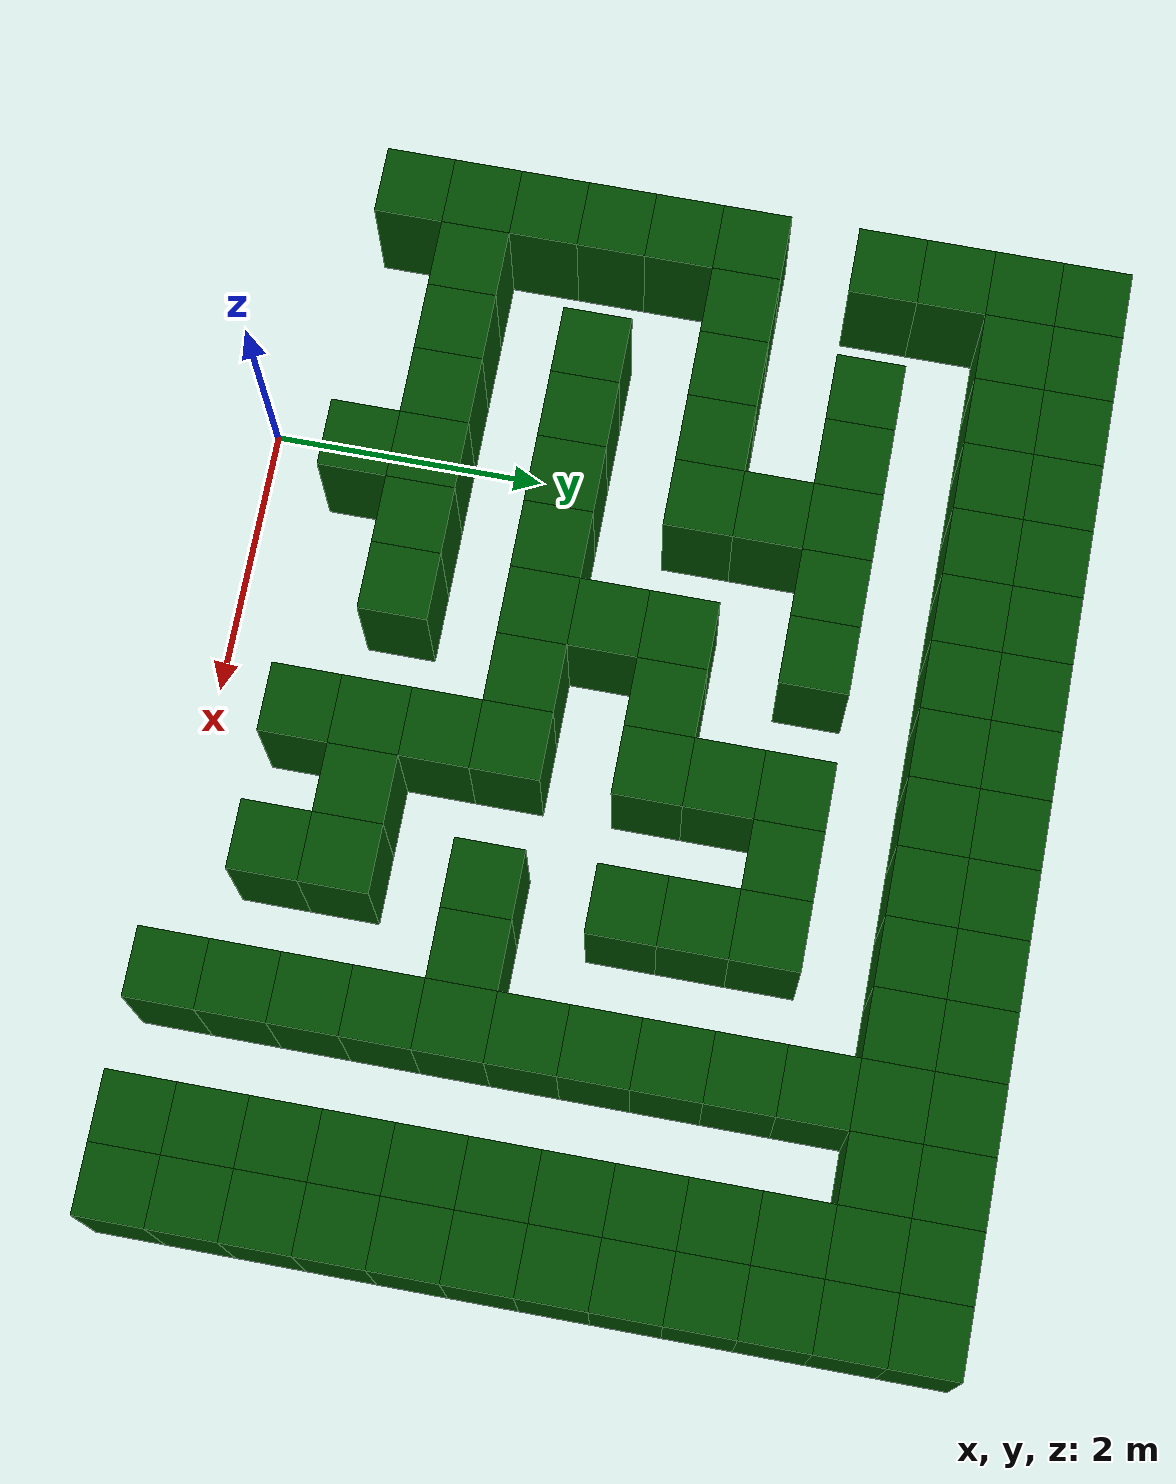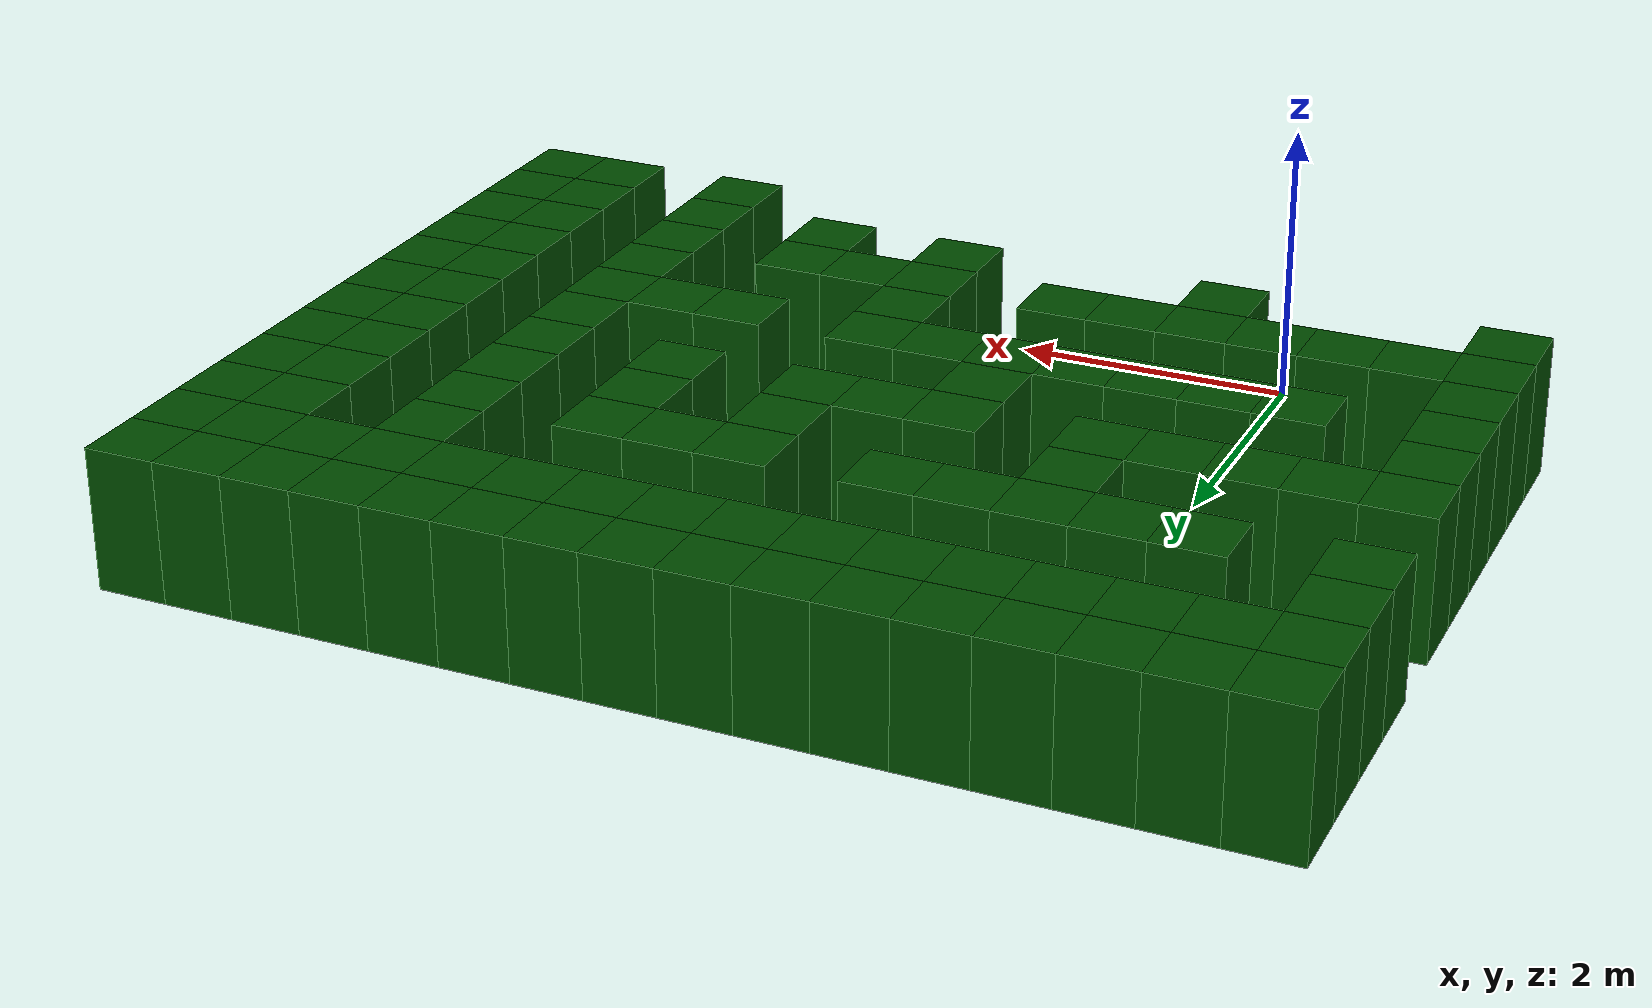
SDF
<sdf version="1.6">
 <world name="turtlebot3_maze">
  <model name="wall_20_12">
   <static>true</static>
   <pose>4.25 0.25 0.5 0 0 0</pose>
   <link name="link">
    <collision name="collision"><geometry><box><size>0.5 0.5 1.0</size></box></geometry></collision>
    <visual name="visual">
     <geometry><box><size>0.5 0.5 1.0</size></box></geometry>
     <material><ambient>0 0.3 0 1</ambient><diffuse>0 0.3 0 1</diffuse></material>
    </visual>
   </link>
  </model>
  <model name="wall_22_12">
   <static>true</static>
   <pose>5.25 0.25 0.5 0 0 0</pose>
   <link name="link">
    <collision name="collision"><geometry><box><size>0.5 0.5 1.0</size></box></geometry></collision>
    <visual name="visual">
     <geometry><box><size>0.5 0.5 1.0</size></box></geometry>
     <material><ambient>0 0.3 0 1</ambient><diffuse>0 0.3 0 1</diffuse></material>
    </visual>
   </link>
  </model>
  <model name="wall_23_12">
   <static>true</static>
   <pose>5.75 0.25 0.5 0 0 0</pose>
   <link name="link">
    <collision name="collision"><geometry><box><size>0.5 0.5 1.0</size></box></geometry></collision>
    <visual name="visual">
     <geometry><box><size>0.5 0.5 1.0</size></box></geometry>
     <material><ambient>0 0.3 0 1</ambient><diffuse>0 0.3 0 1</diffuse></material>
    </visual>
   </link>
  </model>
  <model name="wall_8_13">
   <static>true</static>
   <pose>-1.75 0.75 0.5 0 0 0</pose>
   <link name="link">
    <collision name="collision"><geometry><box><size>0.5 0.5 1.0</size></box></geometry></collision>
    <visual name="visual">
     <geometry><box><size>0.5 0.5 1.0</size></box></geometry>
     <material><ambient>0 0.3 0 1</ambient><diffuse>0 0.3 0 1</diffuse></material>
    </visual>
   </link>
  </model>
  <model name="wall_12_13">
   <static>true</static>
   <pose>0.25 0.75 0.5 0 0 0</pose>
   <link name="link">
    <collision name="collision"><geometry><box><size>0.5 0.5 1.0</size></box></geometry></collision>
    <visual name="visual">
     <geometry><box><size>0.5 0.5 1.0</size></box></geometry>
     <material><ambient>0 0.3 0 1</ambient><diffuse>0 0.3 0 1</diffuse></material>
    </visual>
   </link>
  </model>
  <model name="wall_16_13">
   <static>true</static>
   <pose>2.25 0.75 0.5 0 0 0</pose>
   <link name="link">
    <collision name="collision"><geometry><box><size>0.5 0.5 1.0</size></box></geometry></collision>
    <visual name="visual">
     <geometry><box><size>0.5 0.5 1.0</size></box></geometry>
     <material><ambient>0 0.3 0 1</ambient><diffuse>0 0.3 0 1</diffuse></material>
    </visual>
   </link>
  </model>
  <model name="wall_18_13">
   <static>true</static>
   <pose>3.25 0.75 0.5 0 0 0</pose>
   <link name="link">
    <collision name="collision"><geometry><box><size>0.5 0.5 1.0</size></box></geometry></collision>
    <visual name="visual">
     <geometry><box><size>0.5 0.5 1.0</size></box></geometry>
     <material><ambient>0 0.3 0 1</ambient><diffuse>0 0.3 0 1</diffuse></material>
    </visual>
   </link>
  </model>
  <model name="wall_20_13">
   <static>true</static>
   <pose>4.25 0.75 0.5 0 0 0</pose>
   <link name="link">
    <collision name="collision"><geometry><box><size>0.5 0.5 1.0</size></box></geometry></collision>
    <visual name="visual">
     <geometry><box><size>0.5 0.5 1.0</size></box></geometry>
     <material><ambient>0 0.3 0 1</ambient><diffuse>0 0.3 0 1</diffuse></material>
    </visual>
   </link>
  </model>
  <model name="wall_22_13">
   <static>true</static>
   <pose>5.25 0.75 0.5 0 0 0</pose>
   <link name="link">
    <collision name="collision"><geometry><box><size>0.5 0.5 1.0</size></box></geometry></collision>
    <visual name="visual">
     <geometry><box><size>0.5 0.5 1.0</size></box></geometry>
     <material><ambient>0 0.3 0 1</ambient><diffuse>0 0.3 0 1</diffuse></material>
    </visual>
   </link>
  </model>
  <model name="wall_23_13">
   <static>true</static>
   <pose>5.75 0.75 0.5 0 0 0</pose>
   <link name="link">
    <collision name="collision"><geometry><box><size>0.5 0.5 1.0</size></box></geometry></collision>
    <visual name="visual">
     <geometry><box><size>0.5 0.5 1.0</size></box></geometry>
     <material><ambient>0 0.3 0 1</ambient><diffuse>0 0.3 0 1</diffuse></material>
    </visual>
   </link>
  </model>
  <model name="wall_8_14">
   <static>true</static>
   <pose>-1.75 1.25 0.5 0 0 0</pose>
   <link name="link">
    <collision name="collision"><geometry><box><size>0.5 0.5 1.0</size></box></geometry></collision>
    <visual name="visual">
     <geometry><box><size>0.5 0.5 1.0</size></box></geometry>
     <material><ambient>0 0.3 0 1</ambient><diffuse>0 0.3 0 1</diffuse></material>
    </visual>
   </link>
  </model>
  <model name="wall_9_14">
   <static>true</static>
   <pose>-1.25 1.25 0.5 0 0 0</pose>
   <link name="link">
    <collision name="collision"><geometry><box><size>0.5 0.5 1.0</size></box></geometry></collision>
    <visual name="visual">
     <geometry><box><size>0.5 0.5 1.0</size></box></geometry>
     <material><ambient>0 0.3 0 1</ambient><diffuse>0 0.3 0 1</diffuse></material>
    </visual>
   </link>
  </model>
  <model name="wall_10_14">
   <static>true</static>
   <pose>-0.75 1.25 0.5 0 0 0</pose>
   <link name="link">
    <collision name="collision"><geometry><box><size>0.5 0.5 1.0</size></box></geometry></collision>
    <visual name="visual">
     <geometry><box><size>0.5 0.5 1.0</size></box></geometry>
     <material><ambient>0 0.3 0 1</ambient><diffuse>0 0.3 0 1</diffuse></material>
    </visual>
   </link>
  </model>
  <model name="wall_11_14">
   <static>true</static>
   <pose>-0.25 1.25 0.5 0 0 0</pose>
   <link name="link">
    <collision name="collision"><geometry><box><size>0.5 0.5 1.0</size></box></geometry></collision>
    <visual name="visual">
     <geometry><box><size>0.5 0.5 1.0</size></box></geometry>
     <material><ambient>0 0.3 0 1</ambient><diffuse>0 0.3 0 1</diffuse></material>
    </visual>
   </link>
  </model>
  <model name="wall_12_14">
   <static>true</static>
   <pose>0.25 1.25 0.5 0 0 0</pose>
   <link name="link">
    <collision name="collision"><geometry><box><size>0.5 0.5 1.0</size></box></geometry></collision>
    <visual name="visual">
     <geometry><box><size>0.5 0.5 1.0</size></box></geometry>
     <material><ambient>0 0.3 0 1</ambient><diffuse>0 0.3 0 1</diffuse></material>
    </visual>
   </link>
  </model>
  <model name="wall_13_14">
   <static>true</static>
   <pose>0.75 1.25 0.5 0 0 0</pose>
   <link name="link">
    <collision name="collision"><geometry><box><size>0.5 0.5 1.0</size></box></geometry></collision>
    <visual name="visual">
     <geometry><box><size>0.5 0.5 1.0</size></box></geometry>
     <material><ambient>0 0.3 0 1</ambient><diffuse>0 0.3 0 1</diffuse></material>
    </visual>
   </link>
  </model>
  <model name="wall_14_14">
   <static>true</static>
   <pose>1.25 1.25 0.5 0 0 0</pose>
   <link name="link">
    <collision name="collision"><geometry><box><size>0.5 0.5 1.0</size></box></geometry></collision>
    <visual name="visual">
     <geometry><box><size>0.5 0.5 1.0</size></box></geometry>
     <material><ambient>0 0.3 0 1</ambient><diffuse>0 0.3 0 1</diffuse></material>
    </visual>
   </link>
  </model>
  <model name="wall_16_14">
   <static>true</static>
   <pose>2.25 1.25 0.5 0 0 0</pose>
   <link name="link">
    <collision name="collision"><geometry><box><size>0.5 0.5 1.0</size></box></geometry></collision>
    <visual name="visual">
     <geometry><box><size>0.5 0.5 1.0</size></box></geometry>
     <material><ambient>0 0.3 0 1</ambient><diffuse>0 0.3 0 1</diffuse></material>
    </visual>
   </link>
  </model>
  <model name="wall_17_14">
   <static>true</static>
   <pose>2.75 1.25 0.5 0 0 0</pose>
   <link name="link">
    <collision name="collision"><geometry><box><size>0.5 0.5 1.0</size></box></geometry></collision>
    <visual name="visual">
     <geometry><box><size>0.5 0.5 1.0</size></box></geometry>
     <material><ambient>0 0.3 0 1</ambient><diffuse>0 0.3 0 1</diffuse></material>
    </visual>
   </link>
  </model>
  <model name="wall_18_14">
   <static>true</static>
   <pose>3.25 1.25 0.5 0 0 0</pose>
   <link name="link">
    <collision name="collision"><geometry><box><size>0.5 0.5 1.0</size></box></geometry></collision>
    <visual name="visual">
     <geometry><box><size>0.5 0.5 1.0</size></box></geometry>
     <material><ambient>0 0.3 0 1</ambient><diffuse>0 0.3 0 1</diffuse></material>
    </visual>
   </link>
  </model>
  <model name="wall_20_14">
   <static>true</static>
   <pose>4.25 1.25 0.5 0 0 0</pose>
   <link name="link">
    <collision name="collision"><geometry><box><size>0.5 0.5 1.0</size></box></geometry></collision>
    <visual name="visual">
     <geometry><box><size>0.5 0.5 1.0</size></box></geometry>
     <material><ambient>0 0.3 0 1</ambient><diffuse>0 0.3 0 1</diffuse></material>
    </visual>
   </link>
  </model>
  <model name="wall_22_14">
   <static>true</static>
   <pose>5.25 1.25 0.5 0 0 0</pose>
   <link name="link">
    <collision name="collision"><geometry><box><size>0.5 0.5 1.0</size></box></geometry></collision>
    <visual name="visual">
     <geometry><box><size>0.5 0.5 1.0</size></box></geometry>
     <material><ambient>0 0.3 0 1</ambient><diffuse>0 0.3 0 1</diffuse></material>
    </visual>
   </link>
  </model>
  <model name="wall_23_14">
   <static>true</static>
   <pose>5.75 1.25 0.5 0 0 0</pose>
   <link name="link">
    <collision name="collision"><geometry><box><size>0.5 0.5 1.0</size></box></geometry></collision>
    <visual name="visual">
     <geometry><box><size>0.5 0.5 1.0</size></box></geometry>
     <material><ambient>0 0.3 0 1</ambient><diffuse>0 0.3 0 1</diffuse></material>
    </visual>
   </link>
  </model>
  <model name="wall_8_15">
   <static>true</static>
   <pose>-1.75 1.75 0.5 0 0 0</pose>
   <link name="link">
    <collision name="collision"><geometry><box><size>0.5 0.5 1.0</size></box></geometry></collision>
    <visual name="visual">
     <geometry><box><size>0.5 0.5 1.0</size></box></geometry>
     <material><ambient>0 0.3 0 1</ambient><diffuse>0 0.3 0 1</diffuse></material>
    </visual>
   </link>
  </model>
  <model name="wall_16_15">
   <static>true</static>
   <pose>2.25 1.75 0.5 0 0 0</pose>
   <link name="link">
    <collision name="collision"><geometry><box><size>0.5 0.5 1.0</size></box></geometry></collision>
    <visual name="visual">
     <geometry><box><size>0.5 0.5 1.0</size></box></geometry>
     <material><ambient>0 0.3 0 1</ambient><diffuse>0 0.3 0 1</diffuse></material>
    </visual>
   </link>
  </model>
  <model name="wall_20_15">
   <static>true</static>
   <pose>4.25 1.75 0.5 0 0 0</pose>
   <link name="link">
    <collision name="collision"><geometry><box><size>0.5 0.5 1.0</size></box></geometry></collision>
    <visual name="visual">
     <geometry><box><size>0.5 0.5 1.0</size></box></geometry>
     <material><ambient>0 0.3 0 1</ambient><diffuse>0 0.3 0 1</diffuse></material>
    </visual>
   </link>
  </model>
  <model name="wall_22_15">
   <static>true</static>
   <pose>5.25 1.75 0.5 0 0 0</pose>
   <link name="link">
    <collision name="collision"><geometry><box><size>0.5 0.5 1.0</size></box></geometry></collision>
    <visual name="visual">
     <geometry><box><size>0.5 0.5 1.0</size></box></geometry>
     <material><ambient>0 0.3 0 1</ambient><diffuse>0 0.3 0 1</diffuse></material>
    </visual>
   </link>
  </model>
  <model name="wall_23_15">
   <static>true</static>
   <pose>5.75 1.75 0.5 0 0 0</pose>
   <link name="link">
    <collision name="collision"><geometry><box><size>0.5 0.5 1.0</size></box></geometry></collision>
    <visual name="visual">
     <geometry><box><size>0.5 0.5 1.0</size></box></geometry>
     <material><ambient>0 0.3 0 1</ambient><diffuse>0 0.3 0 1</diffuse></material>
    </visual>
   </link>
  </model>
  <model name="wall_8_16">
   <static>true</static>
   <pose>-1.75 2.25 0.5 0 0 0</pose>
   <link name="link">
    <collision name="collision"><geometry><box><size>0.5 0.5 1.0</size></box></geometry></collision>
    <visual name="visual">
     <geometry><box><size>0.5 0.5 1.0</size></box></geometry>
     <material><ambient>0 0.3 0 1</ambient><diffuse>0 0.3 0 1</diffuse></material>
    </visual>
   </link>
  </model>
  <model name="wall_10_16">
   <static>true</static>
   <pose>-0.75 2.25 0.5 0 0 0</pose>
   <link name="link">
    <collision name="collision"><geometry><box><size>0.5 0.5 1.0</size></box></geometry></collision>
    <visual name="visual">
     <geometry><box><size>0.5 0.5 1.0</size></box></geometry>
     <material><ambient>0 0.3 0 1</ambient><diffuse>0 0.3 0 1</diffuse></material>
    </visual>
   </link>
  </model>
  <model name="wall_11_16">
   <static>true</static>
   <pose>-0.25 2.25 0.5 0 0 0</pose>
   <link name="link">
    <collision name="collision"><geometry><box><size>0.5 0.5 1.0</size></box></geometry></collision>
    <visual name="visual">
     <geometry><box><size>0.5 0.5 1.0</size></box></geometry>
     <material><ambient>0 0.3 0 1</ambient><diffuse>0 0.3 0 1</diffuse></material>
    </visual>
   </link>
  </model>
  <model name="wall_12_16">
   <static>true</static>
   <pose>0.25 2.25 0.5 0 0 0</pose>
   <link name="link">
    <collision name="collision"><geometry><box><size>0.5 0.5 1.0</size></box></geometry></collision>
    <visual name="visual">
     <geometry><box><size>0.5 0.5 1.0</size></box></geometry>
     <material><ambient>0 0.3 0 1</ambient><diffuse>0 0.3 0 1</diffuse></material>
    </visual>
   </link>
  </model>
  <model name="wall_13_16">
   <static>true</static>
   <pose>0.75 2.25 0.5 0 0 0</pose>
   <link name="link">
    <collision name="collision"><geometry><box><size>0.5 0.5 1.0</size></box></geometry></collision>
    <visual name="visual">
     <geometry><box><size>0.5 0.5 1.0</size></box></geometry>
     <material><ambient>0 0.3 0 1</ambient><diffuse>0 0.3 0 1</diffuse></material>
    </visual>
   </link>
  </model>
  <model name="wall_14_16">
   <static>true</static>
   <pose>1.25 2.25 0.5 0 0 0</pose>
   <link name="link">
    <collision name="collision"><geometry><box><size>0.5 0.5 1.0</size></box></geometry></collision>
    <visual name="visual">
     <geometry><box><size>0.5 0.5 1.0</size></box></geometry>
     <material><ambient>0 0.3 0 1</ambient><diffuse>0 0.3 0 1</diffuse></material>
    </visual>
   </link>
  </model>
  <model name="wall_15_16">
   <static>true</static>
   <pose>1.75 2.25 0.5 0 0 0</pose>
   <link name="link">
    <collision name="collision"><geometry><box><size>0.5 0.5 1.0</size></box></geometry></collision>
    <visual name="visual">
     <geometry><box><size>0.5 0.5 1.0</size></box></geometry>
     <material><ambient>0 0.3 0 1</ambient><diffuse>0 0.3 0 1</diffuse></material>
    </visual>
   </link>
  </model>
  <model name="wall_16_16">
   <static>true</static>
   <pose>2.25 2.25 0.5 0 0 0</pose>
   <link name="link">
    <collision name="collision"><geometry><box><size>0.5 0.5 1.0</size></box></geometry></collision>
    <visual name="visual">
     <geometry><box><size>0.5 0.5 1.0</size></box></geometry>
     <material><ambient>0 0.3 0 1</ambient><diffuse>0 0.3 0 1</diffuse></material>
    </visual>
   </link>
  </model>
  <model name="wall_18_16">
   <static>true</static>
   <pose>3.25 2.25 0.5 0 0 0</pose>
   <link name="link">
    <collision name="collision"><geometry><box><size>0.5 0.5 1.0</size></box></geometry></collision>
    <visual name="visual">
     <geometry><box><size>0.5 0.5 1.0</size></box></geometry>
     <material><ambient>0 0.3 0 1</ambient><diffuse>0 0.3 0 1</diffuse></material>
    </visual>
   </link>
  </model>
  <model name="wall_19_16">
   <static>true</static>
   <pose>3.75 2.25 0.5 0 0 0</pose>
   <link name="link">
    <collision name="collision"><geometry><box><size>0.5 0.5 1.0</size></box></geometry></collision>
    <visual name="visual">
     <geometry><box><size>0.5 0.5 1.0</size></box></geometry>
     <material><ambient>0 0.3 0 1</ambient><diffuse>0 0.3 0 1</diffuse></material>
    </visual>
   </link>
  </model>
  <model name="wall_20_16">
   <static>true</static>
   <pose>4.25 2.25 0.5 0 0 0</pose>
   <link name="link">
    <collision name="collision"><geometry><box><size>0.5 0.5 1.0</size></box></geometry></collision>
    <visual name="visual">
     <geometry><box><size>0.5 0.5 1.0</size></box></geometry>
     <material><ambient>0 0.3 0 1</ambient><diffuse>0 0.3 0 1</diffuse></material>
    </visual>
   </link>
  </model>
  <model name="wall_22_16">
   <static>true</static>
   <pose>5.25 2.25 0.5 0 0 0</pose>
   <link name="link">
    <collision name="collision"><geometry><box><size>0.5 0.5 1.0</size></box></geometry></collision>
    <visual name="visual">
     <geometry><box><size>0.5 0.5 1.0</size></box></geometry>
     <material><ambient>0 0.3 0 1</ambient><diffuse>0 0.3 0 1</diffuse></material>
    </visual>
   </link>
  </model>
  <model name="wall_23_16">
   <static>true</static>
   <pose>5.75 2.25 0.5 0 0 0</pose>
   <link name="link">
    <collision name="collision"><geometry><box><size>0.5 0.5 1.0</size></box></geometry></collision>
    <visual name="visual">
     <geometry><box><size>0.5 0.5 1.0</size></box></geometry>
     <material><ambient>0 0.3 0 1</ambient><diffuse>0 0.3 0 1</diffuse></material>
    </visual>
   </link>
  </model>
  <model name="wall_8_17">
   <static>true</static>
   <pose>-1.75 2.75 0.5 0 0 0</pose>
   <link name="link">
    <collision name="collision"><geometry><box><size>0.5 0.5 1.0</size></box></geometry></collision>
    <visual name="visual">
     <geometry><box><size>0.5 0.5 1.0</size></box></geometry>
     <material><ambient>0 0.3 0 1</ambient><diffuse>0 0.3 0 1</diffuse></material>
    </visual>
   </link>
  </model>
  <model name="wall_14_17">
   <static>true</static>
   <pose>1.25 2.75 0.5 0 0 0</pose>
   <link name="link">
    <collision name="collision"><geometry><box><size>0.5 0.5 1.0</size></box></geometry></collision>
    <visual name="visual">
     <geometry><box><size>0.5 0.5 1.0</size></box></geometry>
     <material><ambient>0 0.3 0 1</ambient><diffuse>0 0.3 0 1</diffuse></material>
    </visual>
   </link>
  </model>
  <model name="wall_20_17">
   <static>true</static>
   <pose>4.25 2.75 0.5 0 0 0</pose>
   <link name="link">
    <collision name="collision"><geometry><box><size>0.5 0.5 1.0</size></box></geometry></collision>
    <visual name="visual">
     <geometry><box><size>0.5 0.5 1.0</size></box></geometry>
     <material><ambient>0 0.3 0 1</ambient><diffuse>0 0.3 0 1</diffuse></material>
    </visual>
   </link>
  </model>
  <model name="wall_22_17">
   <static>true</static>
   <pose>5.25 2.75 0.5 0 0 0</pose>
   <link name="link">
    <collision name="collision"><geometry><box><size>0.5 0.5 1.0</size></box></geometry></collision>
    <visual name="visual">
     <geometry><box><size>0.5 0.5 1.0</size></box></geometry>
     <material><ambient>0 0.3 0 1</ambient><diffuse>0 0.3 0 1</diffuse></material>
    </visual>
   </link>
  </model>
  <model name="wall_23_17">
   <static>true</static>
   <pose>5.75 2.75 0.5 0 0 0</pose>
   <link name="link">
    <collision name="collision"><geometry><box><size>0.5 0.5 1.0</size></box></geometry></collision>
    <visual name="visual">
     <geometry><box><size>0.5 0.5 1.0</size></box></geometry>
     <material><ambient>0 0.3 0 1</ambient><diffuse>0 0.3 0 1</diffuse></material>
    </visual>
   </link>
  </model>
  <model name="wall_8_18">
   <static>true</static>
   <pose>-1.75 3.25 0.5 0 0 0</pose>
   <link name="link">
    <collision name="collision"><geometry><box><size>0.5 0.5 1.0</size></box></geometry></collision>
    <visual name="visual">
     <geometry><box><size>0.5 0.5 1.0</size></box></geometry>
     <material><ambient>0 0.3 0 1</ambient><diffuse>0 0.3 0 1</diffuse></material>
    </visual>
   </link>
  </model>
  <model name="wall_9_18">
   <static>true</static>
   <pose>-1.25 3.25 0.5 0 0 0</pose>
   <link name="link">
    <collision name="collision"><geometry><box><size>0.5 0.5 1.0</size></box></geometry></collision>
    <visual name="visual">
     <geometry><box><size>0.5 0.5 1.0</size></box></geometry>
     <material><ambient>0 0.3 0 1</ambient><diffuse>0 0.3 0 1</diffuse></material>
    </visual>
   </link>
  </model>
  <model name="wall_10_18">
   <static>true</static>
   <pose>-0.75 3.25 0.5 0 0 0</pose>
   <link name="link">
    <collision name="collision"><geometry><box><size>0.5 0.5 1.0</size></box></geometry></collision>
    <visual name="visual">
     <geometry><box><size>0.5 0.5 1.0</size></box></geometry>
     <material><ambient>0 0.3 0 1</ambient><diffuse>0 0.3 0 1</diffuse></material>
    </visual>
   </link>
  </model>
  <model name="wall_11_18">
   <static>true</static>
   <pose>-0.25 3.25 0.5 0 0 0</pose>
   <link name="link">
    <collision name="collision"><geometry><box><size>0.5 0.5 1.0</size></box></geometry></collision>
    <visual name="visual">
     <geometry><box><size>0.5 0.5 1.0</size></box></geometry>
     <material><ambient>0 0.3 0 1</ambient><diffuse>0 0.3 0 1</diffuse></material>
    </visual>
   </link>
  </model>
  <model name="wall_12_18">
   <static>true</static>
   <pose>0.25 3.25 0.5 0 0 0</pose>
   <link name="link">
    <collision name="collision"><geometry><box><size>0.5 0.5 1.0</size></box></geometry></collision>
    <visual name="visual">
     <geometry><box><size>0.5 0.5 1.0</size></box></geometry>
     <material><ambient>0 0.3 0 1</ambient><diffuse>0 0.3 0 1</diffuse></material>
    </visual>
   </link>
  </model>
  <model name="wall_14_18">
   <static>true</static>
   <pose>1.25 3.25 0.5 0 0 0</pose>
   <link name="link">
    <collision name="collision"><geometry><box><size>0.5 0.5 1.0</size></box></geometry></collision>
    <visual name="visual">
     <geometry><box><size>0.5 0.5 1.0</size></box></geometry>
     <material><ambient>0 0.3 0 1</ambient><diffuse>0 0.3 0 1</diffuse></material>
    </visual>
   </link>
  </model>
  <model name="wall_15_18">
   <static>true</static>
   <pose>1.75 3.25 0.5 0 0 0</pose>
   <link name="link">
    <collision name="collision"><geometry><box><size>0.5 0.5 1.0</size></box></geometry></collision>
    <visual name="visual">
     <geometry><box><size>0.5 0.5 1.0</size></box></geometry>
     <material><ambient>0 0.3 0 1</ambient><diffuse>0 0.3 0 1</diffuse></material>
    </visual>
   </link>
  </model>
  <model name="wall_16_18">
   <static>true</static>
   <pose>2.25 3.25 0.5 0 0 0</pose>
   <link name="link">
    <collision name="collision"><geometry><box><size>0.5 0.5 1.0</size></box></geometry></collision>
    <visual name="visual">
     <geometry><box><size>0.5 0.5 1.0</size></box></geometry>
     <material><ambient>0 0.3 0 1</ambient><diffuse>0 0.3 0 1</diffuse></material>
    </visual>
   </link>
  </model>
  <model name="wall_18_18">
   <static>true</static>
   <pose>3.25 3.25 0.5 0 0 0</pose>
   <link name="link">
    <collision name="collision"><geometry><box><size>0.5 0.5 1.0</size></box></geometry></collision>
    <visual name="visual">
     <geometry><box><size>0.5 0.5 1.0</size></box></geometry>
     <material><ambient>0 0.3 0 1</ambient><diffuse>0 0.3 0 1</diffuse></material>
    </visual>
   </link>
  </model>
  <model name="wall_20_18">
   <static>true</static>
   <pose>4.25 3.25 0.5 0 0 0</pose>
   <link name="link">
    <collision name="collision"><geometry><box><size>0.5 0.5 1.0</size></box></geometry></collision>
    <visual name="visual">
     <geometry><box><size>0.5 0.5 1.0</size></box></geometry>
     <material><ambient>0 0.3 0 1</ambient><diffuse>0 0.3 0 1</diffuse></material>
    </visual>
   </link>
  </model>
  <model name="wall_22_18">
   <static>true</static>
   <pose>5.25 3.25 0.5 0 0 0</pose>
   <link name="link">
    <collision name="collision"><geometry><box><size>0.5 0.5 1.0</size></box></geometry></collision>
    <visual name="visual">
     <geometry><box><size>0.5 0.5 1.0</size></box></geometry>
     <material><ambient>0 0.3 0 1</ambient><diffuse>0 0.3 0 1</diffuse></material>
    </visual>
   </link>
  </model>
  <model name="wall_23_18">
   <static>true</static>
   <pose>5.75 3.25 0.5 0 0 0</pose>
   <link name="link">
    <collision name="collision"><geometry><box><size>0.5 0.5 1.0</size></box></geometry></collision>
    <visual name="visual">
     <geometry><box><size>0.5 0.5 1.0</size></box></geometry>
     <material><ambient>0 0.3 0 1</ambient><diffuse>0 0.3 0 1</diffuse></material>
    </visual>
   </link>
  </model>
  <model name="wall_12_19">
   <static>true</static>
   <pose>0.25 3.75 0.5 0 0 0</pose>
   <link name="link">
    <collision name="collision"><geometry><box><size>0.5 0.5 1.0</size></box></geometry></collision>
    <visual name="visual">
     <geometry><box><size>0.5 0.5 1.0</size></box></geometry>
     <material><ambient>0 0.3 0 1</ambient><diffuse>0 0.3 0 1</diffuse></material>
    </visual>
   </link>
  </model>
  <model name="wall_16_19">
   <static>true</static>
   <pose>2.25 3.75 0.5 0 0 0</pose>
   <link name="link">
    <collision name="collision"><geometry><box><size>0.5 0.5 1.0</size></box></geometry></collision>
    <visual name="visual">
     <geometry><box><size>0.5 0.5 1.0</size></box></geometry>
     <material><ambient>0 0.3 0 1</ambient><diffuse>0 0.3 0 1</diffuse></material>
    </visual>
   </link>
  </model>
  <model name="wall_18_19">
   <static>true</static>
   <pose>3.25 3.75 0.5 0 0 0</pose>
   <link name="link">
    <collision name="collision"><geometry><box><size>0.5 0.5 1.0</size></box></geometry></collision>
    <visual name="visual">
     <geometry><box><size>0.5 0.5 1.0</size></box></geometry>
     <material><ambient>0 0.3 0 1</ambient><diffuse>0 0.3 0 1</diffuse></material>
    </visual>
   </link>
  </model>
  <model name="wall_20_19">
   <static>true</static>
   <pose>4.25 3.75 0.5 0 0 0</pose>
   <link name="link">
    <collision name="collision"><geometry><box><size>0.5 0.5 1.0</size></box></geometry></collision>
    <visual name="visual">
     <geometry><box><size>0.5 0.5 1.0</size></box></geometry>
     <material><ambient>0 0.3 0 1</ambient><diffuse>0 0.3 0 1</diffuse></material>
    </visual>
   </link>
  </model>
  <model name="wall_22_19">
   <static>true</static>
   <pose>5.25 3.75 0.5 0 0 0</pose>
   <link name="link">
    <collision name="collision"><geometry><box><size>0.5 0.5 1.0</size></box></geometry></collision>
    <visual name="visual">
     <geometry><box><size>0.5 0.5 1.0</size></box></geometry>
     <material><ambient>0 0.3 0 1</ambient><diffuse>0 0.3 0 1</diffuse></material>
    </visual>
   </link>
  </model>
  <model name="wall_23_19">
   <static>true</static>
   <pose>5.75 3.75 0.5 0 0 0</pose>
   <link name="link">
    <collision name="collision"><geometry><box><size>0.5 0.5 1.0</size></box></geometry></collision>
    <visual name="visual">
     <geometry><box><size>0.5 0.5 1.0</size></box></geometry>
     <material><ambient>0 0.3 0 1</ambient><diffuse>0 0.3 0 1</diffuse></material>
    </visual>
   </link>
  </model>
  <model name="wall_8_20">
   <static>true</static>
   <pose>-1.75 4.25 0.5 0 0 0</pose>
   <link name="link">
    <collision name="collision"><geometry><box><size>0.5 0.5 1.0</size></box></geometry></collision>
    <visual name="visual">
     <geometry><box><size>0.5 0.5 1.0</size></box></geometry>
     <material><ambient>0 0.3 0 1</ambient><diffuse>0 0.3 0 1</diffuse></material>
    </visual>
   </link>
  </model>
  <model name="wall_10_20">
   <static>true</static>
   <pose>-0.75 4.25 0.5 0 0 0</pose>
   <link name="link">
    <collision name="collision"><geometry><box><size>0.5 0.5 1.0</size></box></geometry></collision>
    <visual name="visual">
     <geometry><box><size>0.5 0.5 1.0</size></box></geometry>
     <material><ambient>0 0.3 0 1</ambient><diffuse>0 0.3 0 1</diffuse></material>
    </visual>
   </link>
  </model>
  <model name="wall_11_20">
   <static>true</static>
   <pose>-0.25 4.25 0.5 0 0 0</pose>
   <link name="link">
    <collision name="collision"><geometry><box><size>0.5 0.5 1.0</size></box></geometry></collision>
    <visual name="visual">
     <geometry><box><size>0.5 0.5 1.0</size></box></geometry>
     <material><ambient>0 0.3 0 1</ambient><diffuse>0 0.3 0 1</diffuse></material>
    </visual>
   </link>
  </model>
  <model name="wall_12_20">
   <static>true</static>
   <pose>0.25 4.25 0.5 0 0 0</pose>
   <link name="link">
    <collision name="collision"><geometry><box><size>0.5 0.5 1.0</size></box></geometry></collision>
    <visual name="visual">
     <geometry><box><size>0.5 0.5 1.0</size></box></geometry>
     <material><ambient>0 0.3 0 1</ambient><diffuse>0 0.3 0 1</diffuse></material>
    </visual>
   </link>
  </model>
  <model name="wall_13_20">
   <static>true</static>
   <pose>0.75 4.25 0.5 0 0 0</pose>
   <link name="link">
    <collision name="collision"><geometry><box><size>0.5 0.5 1.0</size></box></geometry></collision>
    <visual name="visual">
     <geometry><box><size>0.5 0.5 1.0</size></box></geometry>
     <material><ambient>0 0.3 0 1</ambient><diffuse>0 0.3 0 1</diffuse></material>
    </visual>
   </link>
  </model>
  <model name="wall_14_20">
   <static>true</static>
   <pose>1.25 4.25 0.5 0 0 0</pose>
   <link name="link">
    <collision name="collision"><geometry><box><size>0.5 0.5 1.0</size></box></geometry></collision>
    <visual name="visual">
     <geometry><box><size>0.5 0.5 1.0</size></box></geometry>
     <material><ambient>0 0.3 0 1</ambient><diffuse>0 0.3 0 1</diffuse></material>
    </visual>
   </link>
  </model>
  <model name="wall_16_20">
   <static>true</static>
   <pose>2.25 4.25 0.5 0 0 0</pose>
   <link name="link">
    <collision name="collision"><geometry><box><size>0.5 0.5 1.0</size></box></geometry></collision>
    <visual name="visual">
     <geometry><box><size>0.5 0.5 1.0</size></box></geometry>
     <material><ambient>0 0.3 0 1</ambient><diffuse>0 0.3 0 1</diffuse></material>
    </visual>
   </link>
  </model>
  <model name="wall_17_20">
   <static>true</static>
   <pose>2.75 4.25 0.5 0 0 0</pose>
   <link name="link">
    <collision name="collision"><geometry><box><size>0.5 0.5 1.0</size></box></geometry></collision>
    <visual name="visual">
     <geometry><box><size>0.5 0.5 1.0</size></box></geometry>
     <material><ambient>0 0.3 0 1</ambient><diffuse>0 0.3 0 1</diffuse></material>
    </visual>
   </link>
  </model>
  <model name="wall_18_20">
   <static>true</static>
   <pose>3.25 4.25 0.5 0 0 0</pose>
   <link name="link">
    <collision name="collision"><geometry><box><size>0.5 0.5 1.0</size></box></geometry></collision>
    <visual name="visual">
     <geometry><box><size>0.5 0.5 1.0</size></box></geometry>
     <material><ambient>0 0.3 0 1</ambient><diffuse>0 0.3 0 1</diffuse></material>
    </visual>
   </link>
  </model>
  <model name="wall_20_20">
   <static>true</static>
   <pose>4.25 4.25 0.5 0 0 0</pose>
   <link name="link">
    <collision name="collision"><geometry><box><size>0.5 0.5 1.0</size></box></geometry></collision>
    <visual name="visual">
     <geometry><box><size>0.5 0.5 1.0</size></box></geometry>
     <material><ambient>0 0.3 0 1</ambient><diffuse>0 0.3 0 1</diffuse></material>
    </visual>
   </link>
  </model>
  <model name="wall_22_20">
   <static>true</static>
   <pose>5.25 4.25 0.5 0 0 0</pose>
   <link name="link">
    <collision name="collision"><geometry><box><size>0.5 0.5 1.0</size></box></geometry></collision>
    <visual name="visual">
     <geometry><box><size>0.5 0.5 1.0</size></box></geometry>
     <material><ambient>0 0.3 0 1</ambient><diffuse>0 0.3 0 1</diffuse></material>
    </visual>
   </link>
  </model>
  <model name="wall_23_20">
   <static>true</static>
   <pose>5.75 4.25 0.5 0 0 0</pose>
   <link name="link">
    <collision name="collision"><geometry><box><size>0.5 0.5 1.0</size></box></geometry></collision>
    <visual name="visual">
     <geometry><box><size>0.5 0.5 1.0</size></box></geometry>
     <material><ambient>0 0.3 0 1</ambient><diffuse>0 0.3 0 1</diffuse></material>
    </visual>
   </link>
  </model>
  <model name="wall_8_21">
   <static>true</static>
   <pose>-1.75 4.75 0.5 0 0 0</pose>
   <link name="link">
    <collision name="collision"><geometry><box><size>0.5 0.5 1.0</size></box></geometry></collision>
    <visual name="visual">
     <geometry><box><size>0.5 0.5 1.0</size></box></geometry>
     <material><ambient>0 0.3 0 1</ambient><diffuse>0 0.3 0 1</diffuse></material>
    </visual>
   </link>
  </model>
  <model name="wall_20_21">
   <static>true</static>
   <pose>4.25 4.75 0.5 0 0 0</pose>
   <link name="link">
    <collision name="collision"><geometry><box><size>0.5 0.5 1.0</size></box></geometry></collision>
    <visual name="visual">
     <geometry><box><size>0.5 0.5 1.0</size></box></geometry>
     <material><ambient>0 0.3 0 1</ambient><diffuse>0 0.3 0 1</diffuse></material>
    </visual>
   </link>
  </model>
  <model name="wall_22_21">
   <static>true</static>
   <pose>5.25 4.75 0.5 0 0 0</pose>
   <link name="link">
    <collision name="collision"><geometry><box><size>0.5 0.5 1.0</size></box></geometry></collision>
    <visual name="visual">
     <geometry><box><size>0.5 0.5 1.0</size></box></geometry>
     <material><ambient>0 0.3 0 1</ambient><diffuse>0 0.3 0 1</diffuse></material>
    </visual>
   </link>
  </model>
  <model name="wall_23_21">
   <static>true</static>
   <pose>5.75 4.75 0.5 0 0 0</pose>
   <link name="link">
    <collision name="collision"><geometry><box><size>0.5 0.5 1.0</size></box></geometry></collision>
    <visual name="visual">
     <geometry><box><size>0.5 0.5 1.0</size></box></geometry>
     <material><ambient>0 0.3 0 1</ambient><diffuse>0 0.3 0 1</diffuse></material>
    </visual>
   </link>
  </model>
  <model name="wall_8_22">
   <static>true</static>
   <pose>-1.75 5.25 0.5 0 0 0</pose>
   <link name="link">
    <collision name="collision"><geometry><box><size>0.5 0.5 1.0</size></box></geometry></collision>
    <visual name="visual">
     <geometry><box><size>0.5 0.5 1.0</size></box></geometry>
     <material><ambient>0 0.3 0 1</ambient><diffuse>0 0.3 0 1</diffuse></material>
    </visual>
   </link>
  </model>
  <model name="wall_9_22">
   <static>true</static>
   <pose>-1.25 5.25 0.5 0 0 0</pose>
   <link name="link">
    <collision name="collision"><geometry><box><size>0.5 0.5 1.0</size></box></geometry></collision>
    <visual name="visual">
     <geometry><box><size>0.5 0.5 1.0</size></box></geometry>
     <material><ambient>0 0.3 0 1</ambient><diffuse>0 0.3 0 1</diffuse></material>
    </visual>
   </link>
  </model>
  <model name="wall_10_22">
   <static>true</static>
   <pose>-0.75 5.25 0.5 0 0 0</pose>
   <link name="link">
    <collision name="collision"><geometry><box><size>0.5 0.5 1.0</size></box></geometry></collision>
    <visual name="visual">
     <geometry><box><size>0.5 0.5 1.0</size></box></geometry>
     <material><ambient>0 0.3 0 1</ambient><diffuse>0 0.3 0 1</diffuse></material>
    </visual>
   </link>
  </model>
  <model name="wall_11_22">
   <static>true</static>
   <pose>-0.25 5.25 0.5 0 0 0</pose>
   <link name="link">
    <collision name="collision"><geometry><box><size>0.5 0.5 1.0</size></box></geometry></collision>
    <visual name="visual">
     <geometry><box><size>0.5 0.5 1.0</size></box></geometry>
     <material><ambient>0 0.3 0 1</ambient><diffuse>0 0.3 0 1</diffuse></material>
    </visual>
   </link>
  </model>
  <model name="wall_12_22">
   <static>true</static>
   <pose>0.25 5.25 0.5 0 0 0</pose>
   <link name="link">
    <collision name="collision"><geometry><box><size>0.5 0.5 1.0</size></box></geometry></collision>
    <visual name="visual">
     <geometry><box><size>0.5 0.5 1.0</size></box></geometry>
     <material><ambient>0 0.3 0 1</ambient><diffuse>0 0.3 0 1</diffuse></material>
    </visual>
   </link>
  </model>
  <model name="wall_13_22">
   <static>true</static>
   <pose>0.75 5.25 0.5 0 0 0</pose>
   <link name="link">
    <collision name="collision"><geometry><box><size>0.5 0.5 1.0</size></box></geometry></collision>
    <visual name="visual">
     <geometry><box><size>0.5 0.5 1.0</size></box></geometry>
     <material><ambient>0 0.3 0 1</ambient><diffuse>0 0.3 0 1</diffuse></material>
    </visual>
   </link>
  </model>
  <model name="wall_14_22">
   <static>true</static>
   <pose>1.25 5.25 0.5 0 0 0</pose>
   <link name="link">
    <collision name="collision"><geometry><box><size>0.5 0.5 1.0</size></box></geometry></collision>
    <visual name="visual">
     <geometry><box><size>0.5 0.5 1.0</size></box></geometry>
     <material><ambient>0 0.3 0 1</ambient><diffuse>0 0.3 0 1</diffuse></material>
    </visual>
   </link>
  </model>
  <model name="wall_15_22">
   <static>true</static>
   <pose>1.75 5.25 0.5 0 0 0</pose>
   <link name="link">
    <collision name="collision"><geometry><box><size>0.5 0.5 1.0</size></box></geometry></collision>
    <visual name="visual">
     <geometry><box><size>0.5 0.5 1.0</size></box></geometry>
     <material><ambient>0 0.3 0 1</ambient><diffuse>0 0.3 0 1</diffuse></material>
    </visual>
   </link>
  </model>
  <model name="wall_16_22">
   <static>true</static>
   <pose>2.25 5.25 0.5 0 0 0</pose>
   <link name="link">
    <collision name="collision"><geometry><box><size>0.5 0.5 1.0</size></box></geometry></collision>
    <visual name="visual">
     <geometry><box><size>0.5 0.5 1.0</size></box></geometry>
     <material><ambient>0 0.3 0 1</ambient><diffuse>0 0.3 0 1</diffuse></material>
    </visual>
   </link>
  </model>
  <model name="wall_17_22">
   <static>true</static>
   <pose>2.75 5.25 0.5 0 0 0</pose>
   <link name="link">
    <collision name="collision"><geometry><box><size>0.5 0.5 1.0</size></box></geometry></collision>
    <visual name="visual">
     <geometry><box><size>0.5 0.5 1.0</size></box></geometry>
     <material><ambient>0 0.3 0 1</ambient><diffuse>0 0.3 0 1</diffuse></material>
    </visual>
   </link>
  </model>
  <model name="wall_18_22">
   <static>true</static>
   <pose>3.25 5.25 0.5 0 0 0</pose>
   <link name="link">
    <collision name="collision"><geometry><box><size>0.5 0.5 1.0</size></box></geometry></collision>
    <visual name="visual">
     <geometry><box><size>0.5 0.5 1.0</size></box></geometry>
     <material><ambient>0 0.3 0 1</ambient><diffuse>0 0.3 0 1</diffuse></material>
    </visual>
   </link>
  </model>
  <model name="wall_19_22">
   <static>true</static>
   <pose>3.75 5.25 0.5 0 0 0</pose>
   <link name="link">
    <collision name="collision"><geometry><box><size>0.5 0.5 1.0</size></box></geometry></collision>
    <visual name="visual">
     <geometry><box><size>0.5 0.5 1.0</size></box></geometry>
     <material><ambient>0 0.3 0 1</ambient><diffuse>0 0.3 0 1</diffuse></material>
    </visual>
   </link>
  </model>
  <model name="wall_20_22">
   <static>true</static>
   <pose>4.25 5.25 0.5 0 0 0</pose>
   <link name="link">
    <collision name="collision"><geometry><box><size>0.5 0.5 1.0</size></box></geometry></collision>
    <visual name="visual">
     <geometry><box><size>0.5 0.5 1.0</size></box></geometry>
     <material><ambient>0 0.3 0 1</ambient><diffuse>0 0.3 0 1</diffuse></material>
    </visual>
   </link>
  </model>
  <model name="wall_21_22">
   <static>true</static>
   <pose>4.75 5.25 0.5 0 0 0</pose>
   <link name="link">
    <collision name="collision"><geometry><box><size>0.5 0.5 1.0</size></box></geometry></collision>
    <visual name="visual">
     <geometry><box><size>0.5 0.5 1.0</size></box></geometry>
     <material><ambient>0 0.3 0 1</ambient><diffuse>0 0.3 0 1</diffuse></material>
    </visual>
   </link>
  </model>
  <model name="wall_22_22">
   <static>true</static>
   <pose>5.25 5.25 0.5 0 0 0</pose>
   <link name="link">
    <collision name="collision"><geometry><box><size>0.5 0.5 1.0</size></box></geometry></collision>
    <visual name="visual">
     <geometry><box><size>0.5 0.5 1.0</size></box></geometry>
     <material><ambient>0 0.3 0 1</ambient><diffuse>0 0.3 0 1</diffuse></material>
    </visual>
   </link>
  </model>
  <model name="wall_23_22">
   <static>true</static>
   <pose>5.75 5.25 0.5 0 0 0</pose>
   <link name="link">
    <collision name="collision"><geometry><box><size>0.5 0.5 1.0</size></box></geometry></collision>
    <visual name="visual">
     <geometry><box><size>0.5 0.5 1.0</size></box></geometry>
     <material><ambient>0 0.3 0 1</ambient><diffuse>0 0.3 0 1</diffuse></material>
    </visual>
   </link>
  </model>
  <model name="wall_8_23">
   <static>true</static>
   <pose>-1.75 5.75 0.5 0 0 0</pose>
   <link name="link">
    <collision name="collision"><geometry><box><size>0.5 0.5 1.0</size></box></geometry></collision>
    <visual name="visual">
     <geometry><box><size>0.5 0.5 1.0</size></box></geometry>
     <material><ambient>0 0.3 0 1</ambient><diffuse>0 0.3 0 1</diffuse></material>
    </visual>
   </link>
  </model>
  <model name="wall_9_23">
   <static>true</static>
   <pose>-1.25 5.75 0.5 0 0 0</pose>
   <link name="link">
    <collision name="collision"><geometry><box><size>0.5 0.5 1.0</size></box></geometry></collision>
    <visual name="visual">
     <geometry><box><size>0.5 0.5 1.0</size></box></geometry>
     <material><ambient>0 0.3 0 1</ambient><diffuse>0 0.3 0 1</diffuse></material>
    </visual>
   </link>
  </model>
  <model name="wall_10_23">
   <static>true</static>
   <pose>-0.75 5.75 0.5 0 0 0</pose>
   <link name="link">
    <collision name="collision"><geometry><box><size>0.5 0.5 1.0</size></box></geometry></collision>
    <visual name="visual">
     <geometry><box><size>0.5 0.5 1.0</size></box></geometry>
     <material><ambient>0 0.3 0 1</ambient><diffuse>0 0.3 0 1</diffuse></material>
    </visual>
   </link>
  </model>
  <model name="wall_11_23">
   <static>true</static>
   <pose>-0.25 5.75 0.5 0 0 0</pose>
   <link name="link">
    <collision name="collision"><geometry><box><size>0.5 0.5 1.0</size></box></geometry></collision>
    <visual name="visual">
     <geometry><box><size>0.5 0.5 1.0</size></box></geometry>
     <material><ambient>0 0.3 0 1</ambient><diffuse>0 0.3 0 1</diffuse></material>
    </visual>
   </link>
  </model>
  <model name="wall_12_23">
   <static>true</static>
   <pose>0.25 5.75 0.5 0 0 0</pose>
   <link name="link">
    <collision name="collision"><geometry><box><size>0.5 0.5 1.0</size></box></geometry></collision>
    <visual name="visual">
     <geometry><box><size>0.5 0.5 1.0</size></box></geometry>
     <material><ambient>0 0.3 0 1</ambient><diffuse>0 0.3 0 1</diffuse></material>
    </visual>
   </link>
  </model>
  <model name="wall_13_23">
   <static>true</static>
   <pose>0.75 5.75 0.5 0 0 0</pose>
   <link name="link">
    <collision name="collision"><geometry><box><size>0.5 0.5 1.0</size></box></geometry></collision>
    <visual name="visual">
     <geometry><box><size>0.5 0.5 1.0</size></box></geometry>
     <material><ambient>0 0.3 0 1</ambient><diffuse>0 0.3 0 1</diffuse></material>
    </visual>
   </link>
  </model>
  <model name="wall_14_23">
   <static>true</static>
   <pose>1.25 5.75 0.5 0 0 0</pose>
   <link name="link">
    <collision name="collision"><geometry><box><size>0.5 0.5 1.0</size></box></geometry></collision>
    <visual name="visual">
     <geometry><box><size>0.5 0.5 1.0</size></box></geometry>
     <material><ambient>0 0.3 0 1</ambient><diffuse>0 0.3 0 1</diffuse></material>
    </visual>
   </link>
  </model>
  <model name="wall_15_23">
   <static>true</static>
   <pose>1.75 5.75 0.5 0 0 0</pose>
   <link name="link">
    <collision name="collision"><geometry><box><size>0.5 0.5 1.0</size></box></geometry></collision>
    <visual name="visual">
     <geometry><box><size>0.5 0.5 1.0</size></box></geometry>
     <material><ambient>0 0.3 0 1</ambient><diffuse>0 0.3 0 1</diffuse></material>
    </visual>
   </link>
  </model>
  <model name="wall_16_23">
   <static>true</static>
   <pose>2.25 5.75 0.5 0 0 0</pose>
   <link name="link">
    <collision name="collision"><geometry><box><size>0.5 0.5 1.0</size></box></geometry></collision>
    <visual name="visual">
     <geometry><box><size>0.5 0.5 1.0</size></box></geometry>
     <material><ambient>0 0.3 0 1</ambient><diffuse>0 0.3 0 1</diffuse></material>
    </visual>
   </link>
  </model>
  <model name="wall_17_23">
   <static>true</static>
   <pose>2.75 5.75 0.5 0 0 0</pose>
   <link name="link">
    <collision name="collision"><geometry><box><size>0.5 0.5 1.0</size></box></geometry></collision>
    <visual name="visual">
     <geometry><box><size>0.5 0.5 1.0</size></box></geometry>
     <material><ambient>0 0.3 0 1</ambient><diffuse>0 0.3 0 1</diffuse></material>
    </visual>
   </link>
  </model>
  <model name="wall_18_23">
   <static>true</static>
   <pose>3.25 5.75 0.5 0 0 0</pose>
   <link name="link">
    <collision name="collision"><geometry><box><size>0.5 0.5 1.0</size></box></geometry></collision>
    <visual name="visual">
     <geometry><box><size>0.5 0.5 1.0</size></box></geometry>
     <material><ambient>0 0.3 0 1</ambient><diffuse>0 0.3 0 1</diffuse></material>
    </visual>
   </link>
  </model>
  <model name="wall_19_23">
   <static>true</static>
   <pose>3.75 5.75 0.5 0 0 0</pose>
   <link name="link">
    <collision name="collision"><geometry><box><size>0.5 0.5 1.0</size></box></geometry></collision>
    <visual name="visual">
     <geometry><box><size>0.5 0.5 1.0</size></box></geometry>
     <material><ambient>0 0.3 0 1</ambient><diffuse>0 0.3 0 1</diffuse></material>
    </visual>
   </link>
  </model>
  <model name="wall_20_23">
   <static>true</static>
   <pose>4.25 5.75 0.5 0 0 0</pose>
   <link name="link">
    <collision name="collision"><geometry><box><size>0.5 0.5 1.0</size></box></geometry></collision>
    <visual name="visual">
     <geometry><box><size>0.5 0.5 1.0</size></box></geometry>
     <material><ambient>0 0.3 0 1</ambient><diffuse>0 0.3 0 1</diffuse></material>
    </visual>
   </link>
  </model>
  <model name="wall_21_23">
   <static>true</static>
   <pose>4.75 5.75 0.5 0 0 0</pose>
   <link name="link">
    <collision name="collision"><geometry><box><size>0.5 0.5 1.0</size></box></geometry></collision>
    <visual name="visual">
     <geometry><box><size>0.5 0.5 1.0</size></box></geometry>
     <material><ambient>0 0.3 0 1</ambient><diffuse>0 0.3 0 1</diffuse></material>
    </visual>
   </link>
  </model>
  <model name="wall_22_23">
   <static>true</static>
   <pose>5.25 5.75 0.5 0 0 0</pose>
   <link name="link">
    <collision name="collision"><geometry><box><size>0.5 0.5 1.0</size></box></geometry></collision>
    <visual name="visual">
     <geometry><box><size>0.5 0.5 1.0</size></box></geometry>
     <material><ambient>0 0.3 0 1</ambient><diffuse>0 0.3 0 1</diffuse></material>
    </visual>
   </link>
  </model>
  <model name="wall_23_23">
   <static>true</static>
   <pose>5.75 5.75 0.5 0 0 0</pose>
   <link name="link">
    <collision name="collision"><geometry><box><size>0.5 0.5 1.0</size></box></geometry></collision>
    <visual name="visual">
     <geometry><box><size>0.5 0.5 1.0</size></box></geometry>
     <material><ambient>0 0.3 0 1</ambient><diffuse>0 0.3 0 1</diffuse></material>
    </visual>
   </link>
  </model>
 </world>
</sdf>
